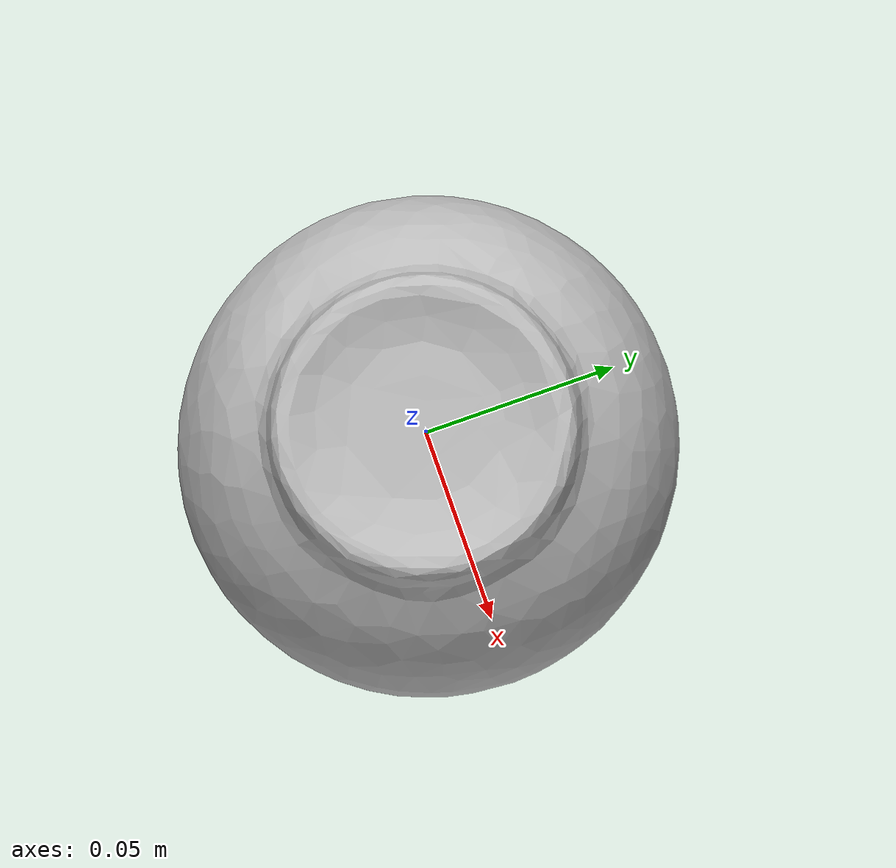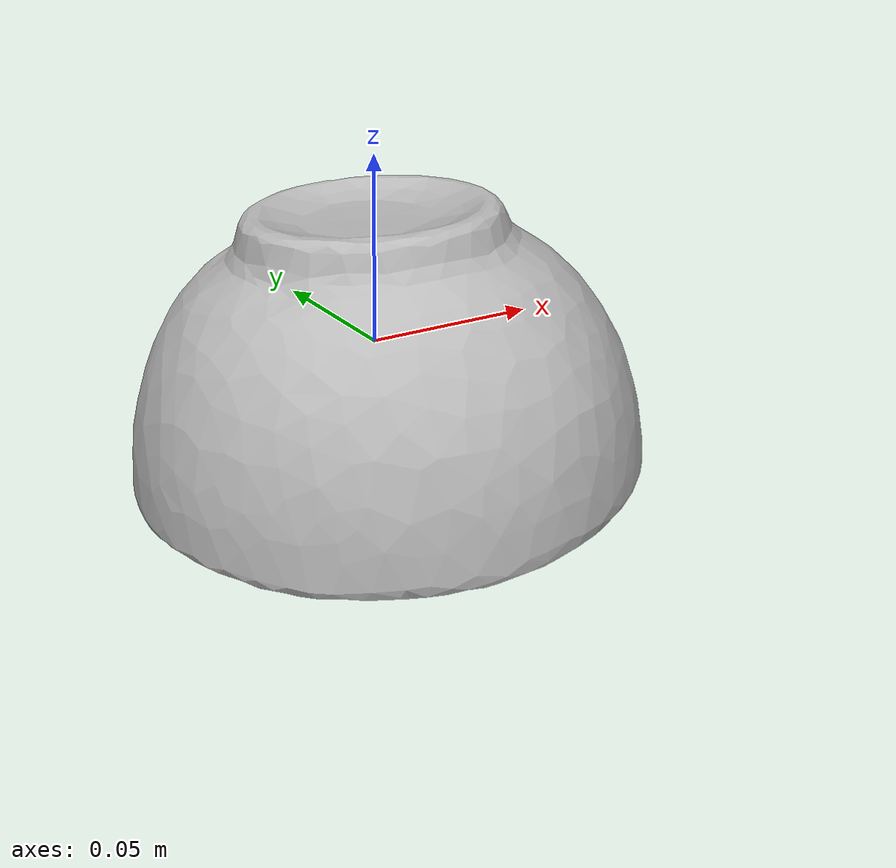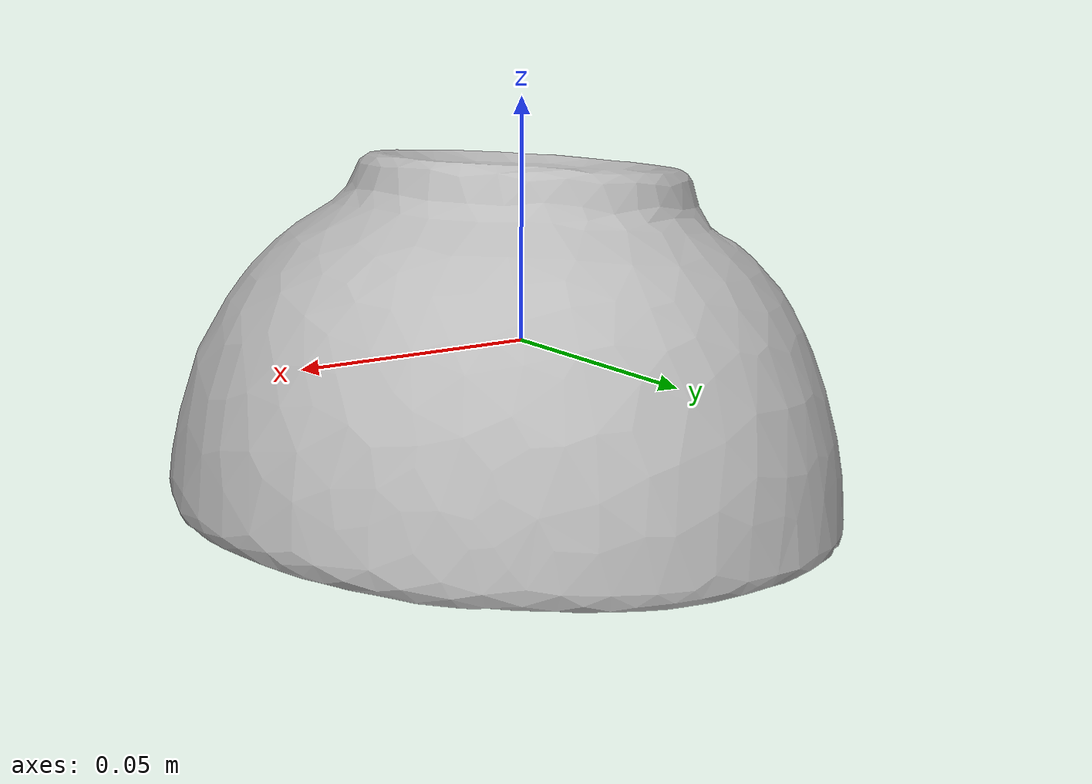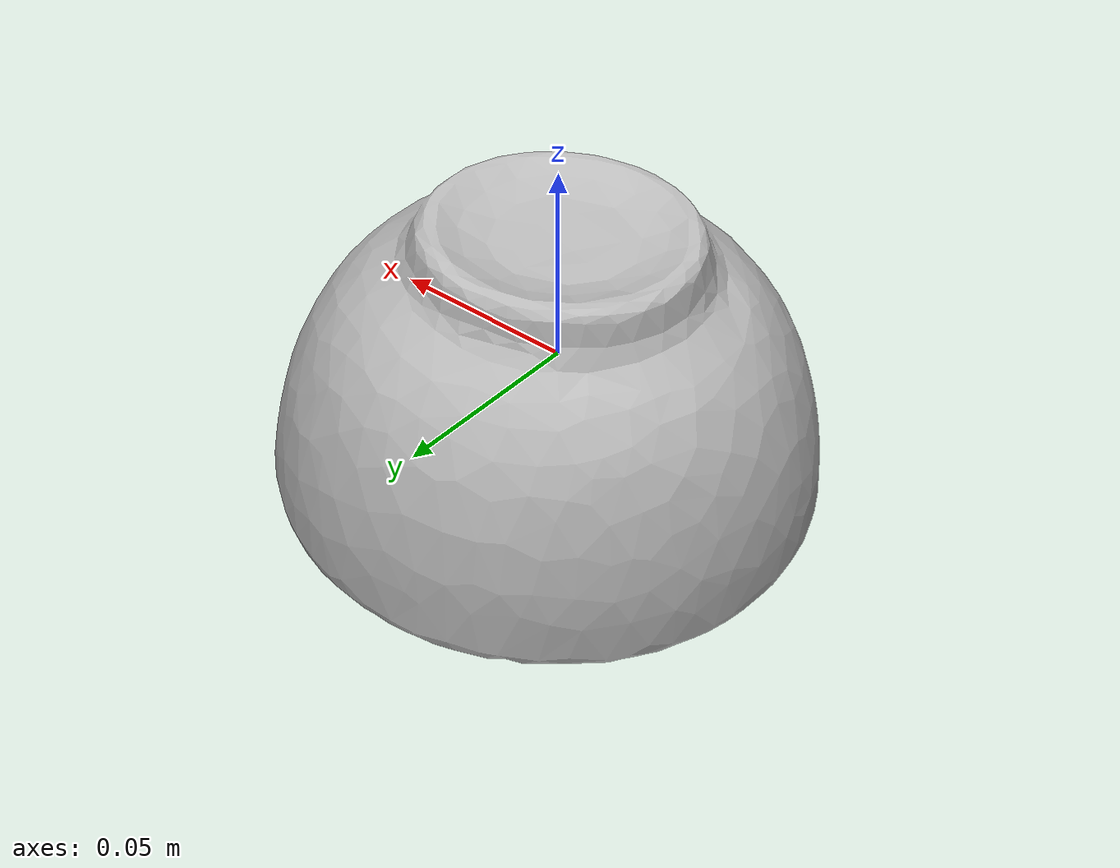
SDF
<?xml version='1.0'?>
<sdf version='1.6'>
	<model name='a_bowl'>
		<static>false</static>
		<pose>0 0 0 0 0 0</pose>

		<link name='link'>
			<inertial>
			<mass>0.407</mass>
			<pose>0.0002088 0.00026134 -0.00023605 0 0 0</pose>
				<inertia>
					<ixx>7.6228e-06</ixx>
					<ixy>0</ixy>
					<ixz>0</ixz>
					<iyy>3.2294e-06</iyy>
					<iyz>0</iyz>
					<izz>1.6555e-06</izz>
				</inertia>
			</inertial>
			<collision name='collision'>
				<geometry>
					<mesh>
						<uri>model://a_bowl/a_bowl.dae</uri>
					</mesh>
				</geometry>
				<surface>
					<friction>
						<ode>
							<mu>0.2</mu>
							<mu2>0.2</mu2>
						</ode>
					</friction>
				</surface>
			</collision>
			<visual name='visual'>
				<geometry>
					<mesh>
						<uri>model://a_bowl/a_bowl.dae</uri>
					</mesh>
				</geometry>
			</visual>
		</link>
	</model>
</sdf>
